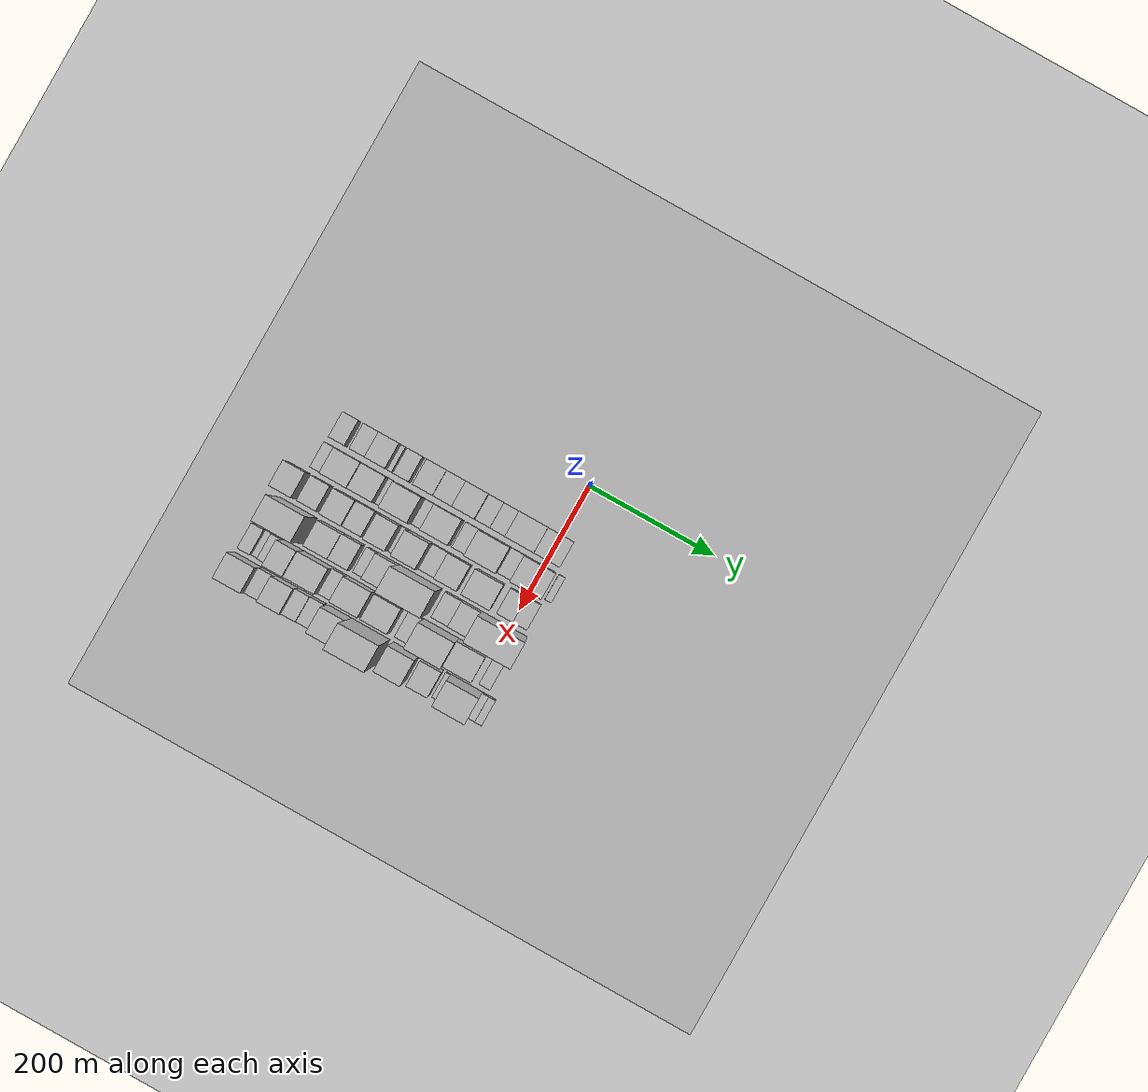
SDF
<sdf version="1.6">
 <world name="default">
  <include><name>ground_plane_1</name><uri>model://HANNAS_ground_plane</uri></include>
  <include>
   <name>ground_plane_2</name>
   <uri>model://HANNAS_ground_plane</uri>
   <pose>100 0 0  0 0 0</pose>
  </include>
  <model name="building_14">
   <static>1</static>
   <pose>100.0000 -334.8359 0 0.000000 0.000000 0.000000</pose>
   <link name="link">
    <pose>0 0 22.50 0 0 0</pose>
    <collision name="collision"><geometry><box><size>40.0000 25.0428 45.0000</size></box></geometry></collision>
    <visual name="visual">
     <cast_shadows>0</cast_shadows>
     <geometry><box><size>40.0000 25.0428 45.0000</size></box></geometry>
     <material>
      <script>
       <uri>model://HANNAS_wall/materials/scripts</uri>
       <uri>model://HANNAS_wall/materials/textures</uri>
       <name>vrc/HANNAS_wall</name>
      </script>
     </material>
    </visual>
   </link>
  </model>
  <model name="building_15">
   <static>1</static>
   <pose>100.0000 -301.9483 0 0.000000 0.000000 0.000000</pose>
   <link name="link">
    <pose>0 0 24.00 0 0 0</pose>
    <collision name="collision"><geometry><box><size>40.0000 24.7324 48.0000</size></box></geometry></collision>
    <visual name="visual">
     <cast_shadows>0</cast_shadows>
     <geometry><box><size>40.0000 24.7324 48.0000</size></box></geometry>
     <material>
      <script>
       <uri>model://HANNAS_wall/materials/scripts</uri>
       <uri>model://HANNAS_wall/materials/textures</uri>
       <name>vrc/HANNAS_wall</name>
      </script>
     </material>
    </visual>
   </link>
  </model>
  <model name="building_16">
   <static>1</static>
   <pose>100.0000 -273.3891 0 0.000000 0.000000 0.000000</pose>
   <link name="link">
    <pose>0 0 27.00 0 0 0</pose>
    <collision name="collision"><geometry><box><size>40.0000 32.3860 54.0000</size></box></geometry></collision>
    <visual name="visual">
     <cast_shadows>0</cast_shadows>
     <geometry><box><size>40.0000 32.3860 54.0000</size></box></geometry>
     <material>
      <script>
       <uri>model://HANNAS_wall/materials/scripts</uri>
       <uri>model://HANNAS_wall/materials/textures</uri>
       <name>vrc/HANNAS_wall</name>
      </script>
     </material>
    </visual>
   </link>
  </model>
  <model name="building_17">
   <static>1</static>
   <pose>100.0000 -253.6204 0 0.000000 0.000000 0.000000</pose>
   <link name="link">
    <pose>0 0 7.50 0 0 0</pose>
    <collision name="collision"><geometry><box><size>40.0000 7.1513 15.0000</size></box></geometry></collision>
    <visual name="visual">
     <cast_shadows>0</cast_shadows>
     <geometry><box><size>40.0000 7.1513 15.0000</size></box></geometry>
     <material>
      <script>
       <uri>model://HANNAS_wall/materials/scripts</uri>
       <uri>model://HANNAS_wall/materials/textures</uri>
       <name>vrc/HANNAS_wall</name>
      </script>
     </material>
    </visual>
   </link>
  </model>
  <model name="building_18">
   <static>1</static>
   <pose>100.0000 -232.7130 0 0.000000 0.000000 0.000000</pose>
   <link name="link">
    <pose>0 0 24.00 0 0 0</pose>
    <collision name="collision"><geometry><box><size>40.0000 24.6636 48.0000</size></box></geometry></collision>
    <visual name="visual">
     <cast_shadows>0</cast_shadows>
     <geometry><box><size>40.0000 24.6636 48.0000</size></box></geometry>
     <material>
      <script>
       <uri>model://HANNAS_wall/materials/scripts</uri>
       <uri>model://HANNAS_wall/materials/textures</uri>
       <name>vrc/HANNAS_wall</name>
      </script>
     </material>
    </visual>
   </link>
  </model>
  <model name="building_19">
   <static>1</static>
   <pose>100.0000 -197.5365 0 0.000000 0.000000 0.000000</pose>
   <link name="link">
    <pose>0 0 30.00 0 0 0</pose>
    <collision name="collision"><geometry><box><size>40.0000 31.6895 60.0000</size></box></geometry></collision>
    <visual name="visual">
     <cast_shadows>0</cast_shadows>
     <geometry><box><size>40.0000 31.6895 60.0000</size></box></geometry>
     <material>
      <script>
       <uri>model://HANNAS_wall/materials/scripts</uri>
       <uri>model://HANNAS_wall/materials/textures</uri>
       <name>vrc/HANNAS_wall</name>
      </script>
     </material>
    </visual>
   </link>
  </model>
  <model name="building_20">
   <static>1</static>
   <pose>100.0000 -166.4657 0 0.000000 0.000000 0.000000</pose>
   <link name="link">
    <pose>0 0 27.00 0 0 0</pose>
    <collision name="collision"><geometry><box><size>40.0000 30.4520 54.0000</size></box></geometry></collision>
    <visual name="visual">
     <cast_shadows>0</cast_shadows>
     <geometry><box><size>40.0000 30.4520 54.0000</size></box></geometry>
     <material>
      <script>
       <uri>model://HANNAS_wall/materials/scripts</uri>
       <uri>model://HANNAS_wall/materials/textures</uri>
       <name>vrc/HANNAS_wall</name>
      </script>
     </material>
    </visual>
   </link>
  </model>
  <model name="building_21">
   <static>1</static>
   <pose>100.0000 -133.3583 0 0.000000 0.000000 0.000000</pose>
   <link name="link">
    <pose>0 0 33.00 0 0 0</pose>
    <collision name="collision"><geometry><box><size>40.0000 35.7628 66.0000</size></box></geometry></collision>
    <visual name="visual">
     <cast_shadows>0</cast_shadows>
     <geometry><box><size>40.0000 35.7628 66.0000</size></box></geometry>
     <material>
      <script>
       <uri>model://HANNAS_wall/materials/scripts</uri>
       <uri>model://HANNAS_wall/materials/textures</uri>
       <name>vrc/HANNAS_wall</name>
      </script>
     </material>
    </visual>
   </link>
  </model>
  <model name="building_22">
   <static>1</static>
   <pose>100.0000 -103.6162 0 0.000000 0.000000 0.000000</pose>
   <link name="link">
    <pose>0 0 22.50 0 0 0</pose>
    <collision name="collision"><geometry><box><size>40.0000 23.7214 45.0000</size></box></geometry></collision>
    <visual name="visual">
     <cast_shadows>0</cast_shadows>
     <geometry><box><size>40.0000 23.7214 45.0000</size></box></geometry>
     <material>
      <script>
       <uri>model://HANNAS_wall/materials/scripts</uri>
       <uri>model://HANNAS_wall/materials/textures</uri>
       <name>vrc/HANNAS_wall</name>
      </script>
     </material>
    </visual>
   </link>
  </model>
  <model name="building_23">
   <static>1</static>
   <pose>100.0000 -79.4500 0 0.000000 0.000000 0.000000</pose>
   <link name="link">
    <pose>0 0 21.00 0 0 0</pose>
    <collision name="collision"><geometry><box><size>40.0000 24.6110 42.0000</size></box></geometry></collision>
    <visual name="visual">
     <cast_shadows>0</cast_shadows>
     <geometry><box><size>40.0000 24.6110 42.0000</size></box></geometry>
     <material>
      <script>
       <uri>model://HANNAS_wall/materials/scripts</uri>
       <uri>model://HANNAS_wall/materials/textures</uri>
       <name>vrc/HANNAS_wall</name>
      </script>
     </material>
    </visual>
   </link>
  </model>
  <model name="building_24">
   <static>1</static>
   <pose>100.0000 -44.3742 0 0.000000 0.000000 0.000000</pose>
   <link name="link">
    <pose>0 0 40.50 0 0 0</pose>
    <collision name="collision"><geometry><box><size>40.0000 45.5407 81.0000</size></box></geometry></collision>
    <visual name="visual">
     <cast_shadows>0</cast_shadows>
     <geometry><box><size>40.0000 45.5407 81.0000</size></box></geometry>
     <material>
      <script>
       <uri>model://HANNAS_wall/materials/scripts</uri>
       <uri>model://HANNAS_wall/materials/textures</uri>
       <name>vrc/HANNAS_wall</name>
      </script>
     </material>
    </visual>
   </link>
  </model>
  <model name="building_25">
   <static>1</static>
   <pose>100.0000 -1.3551 0 0.000000 0.000000 0.000000</pose>
   <link name="link">
    <pose>0 0 37.50 0 0 0</pose>
    <collision name="collision"><geometry><box><size>40.0000 40.4975 75.0000</size></box></geometry></collision>
    <visual name="visual">
     <cast_shadows>0</cast_shadows>
     <geometry><box><size>40.0000 40.4975 75.0000</size></box></geometry>
     <material>
      <script>
       <uri>model://HANNAS_wall/materials/scripts</uri>
       <uri>model://HANNAS_wall/materials/textures</uri>
       <name>vrc/HANNAS_wall</name>
      </script>
     </material>
    </visual>
   </link>
  </model>
  <model name="building_59">
   <static>1</static>
   <pose>149.0000 -340.2768 0 0.000000 0.000000 0.000000</pose>
   <link name="link">
    <pose>0 0 19.50 0 0 0</pose>
    <collision name="collision"><geometry><box><size>40.0000 19.5920 39.0000</size></box></geometry></collision>
    <visual name="visual">
     <cast_shadows>0</cast_shadows>
     <geometry><box><size>40.0000 19.5920 39.0000</size></box></geometry>
     <material>
      <script>
       <uri>model://HANNAS_wall/materials/scripts</uri>
       <uri>model://HANNAS_wall/materials/textures</uri>
       <name>vrc/HANNAS_wall</name>
      </script>
     </material>
    </visual>
   </link>
  </model>
  <model name="building_60">
   <static>1</static>
   <pose>149.0000 -309.3492 0 0.000000 0.000000 0.000000</pose>
   <link name="link">
    <pose>0 0 39.00 0 0 0</pose>
    <collision name="collision"><geometry><box><size>40.0000 42.2632 78.0000</size></box></geometry></collision>
    <visual name="visual">
     <cast_shadows>0</cast_shadows>
     <geometry><box><size>40.0000 42.2632 78.0000</size></box></geometry>
     <material>
      <script>
       <uri>model://HANNAS_wall/materials/scripts</uri>
       <uri>model://HANNAS_wall/materials/textures</uri>
       <name>vrc/HANNAS_wall</name>
      </script>
     </material>
    </visual>
   </link>
  </model>
  <model name="building_61">
   <static>1</static>
   <pose>149.0000 -268.6410 0 0.000000 0.000000 0.000000</pose>
   <link name="link">
    <pose>0 0 34.50 0 0 0</pose>
    <collision name="collision"><geometry><box><size>40.0000 39.1532 69.0000</size></box></geometry></collision>
    <visual name="visual">
     <cast_shadows>0</cast_shadows>
     <geometry><box><size>40.0000 39.1532 69.0000</size></box></geometry>
     <material>
      <script>
       <uri>model://HANNAS_wall/materials/scripts</uri>
       <uri>model://HANNAS_wall/materials/textures</uri>
       <name>vrc/HANNAS_wall</name>
      </script>
     </material>
    </visual>
   </link>
  </model>
  <model name="building_62">
   <static>1</static>
   <pose>149.0000 -245.2549 0 0.000000 0.000000 0.000000</pose>
   <link name="link">
    <pose>0 0 9.00 0 0 0</pose>
    <collision name="collision"><geometry><box><size>40.0000 7.6190 18.0000</size></box></geometry></collision>
    <visual name="visual">
     <cast_shadows>0</cast_shadows>
     <geometry><box><size>40.0000 7.6190 18.0000</size></box></geometry>
     <material>
      <script>
       <uri>model://HANNAS_wall/materials/scripts</uri>
       <uri>model://HANNAS_wall/materials/textures</uri>
       <name>vrc/HANNAS_wall</name>
      </script>
     </material>
    </visual>
   </link>
  </model>
  <model name="building_63">
   <static>1</static>
   <pose>149.0000 -211.4442 0 0.000000 0.000000 0.000000</pose>
   <link name="link">
    <pose>0 0 63.00 0 0 0</pose>
    <collision name="collision"><geometry><box><size>40.0000 44.0024 126.0000</size></box></geometry></collision>
    <visual name="visual">
     <cast_shadows>0</cast_shadows>
     <geometry><box><size>40.0000 44.0024 126.0000</size></box></geometry>
     <material>
      <script>
       <uri>model://HANNAS_wall/materials/scripts</uri>
       <uri>model://HANNAS_wall/materials/textures</uri>
       <name>vrc/HANNAS_wall</name>
      </script>
     </material>
    </visual>
   </link>
  </model>
  <model name="building_64">
   <static>1</static>
   <pose>149.0000 -181.0487 0 0.000000 0.000000 0.000000</pose>
   <link name="link">
    <pose>0 0 16.50 0 0 0</pose>
    <collision name="collision"><geometry><box><size>40.0000 16.7886 33.0000</size></box></geometry></collision>
    <visual name="visual">
     <cast_shadows>0</cast_shadows>
     <geometry><box><size>40.0000 16.7886 33.0000</size></box></geometry>
     <material>
      <script>
       <uri>model://HANNAS_wall/materials/scripts</uri>
       <uri>model://HANNAS_wall/materials/textures</uri>
       <name>vrc/HANNAS_wall</name>
      </script>
     </material>
    </visual>
   </link>
  </model>
  <model name="building_65">
   <static>1</static>
   <pose>149.0000 -150.7828 0 0.000000 0.000000 0.000000</pose>
   <link name="link">
    <pose>0 0 42.00 0 0 0</pose>
    <collision name="collision"><geometry><box><size>40.0000 43.7432 84.0000</size></box></geometry></collision>
    <visual name="visual">
     <cast_shadows>0</cast_shadows>
     <geometry><box><size>40.0000 43.7432 84.0000</size></box></geometry>
     <material>
      <script>
       <uri>model://HANNAS_wall/materials/scripts</uri>
       <uri>model://HANNAS_wall/materials/textures</uri>
       <name>vrc/HANNAS_wall</name>
      </script>
     </material>
    </visual>
   </link>
  </model>
  <model name="building_66">
   <static>1</static>
   <pose>149.0000 -113.1161 0 0.000000 0.000000 0.000000</pose>
   <link name="link">
    <pose>0 0 21.00 0 0 0</pose>
    <collision name="collision"><geometry><box><size>40.0000 23.5902 42.0000</size></box></geometry></collision>
    <visual name="visual">
     <cast_shadows>0</cast_shadows>
     <geometry><box><size>40.0000 23.5902 42.0000</size></box></geometry>
     <material>
      <script>
       <uri>model://HANNAS_wall/materials/scripts</uri>
       <uri>model://HANNAS_wall/materials/textures</uri>
       <name>vrc/HANNAS_wall</name>
      </script>
     </material>
    </visual>
   </link>
  </model>
  <model name="building_67">
   <static>1</static>
   <pose>149.0000 -76.9231 0 0.000000 0.000000 0.000000</pose>
   <link name="link">
    <pose>0 0 67.50 0 0 0</pose>
    <collision name="collision"><geometry><box><size>40.0000 48.7959 135.0000</size></box></geometry></collision>
    <visual name="visual">
     <cast_shadows>0</cast_shadows>
     <geometry><box><size>40.0000 48.7959 135.0000</size></box></geometry>
     <material>
      <script>
       <uri>model://HANNAS_wall/materials/scripts</uri>
       <uri>model://HANNAS_wall/materials/textures</uri>
       <name>vrc/HANNAS_wall</name>
      </script>
     </material>
    </visual>
   </link>
  </model>
  <model name="building_68">
   <static>1</static>
   <pose>149.0000 -41.5381 0 0.000000 0.000000 0.000000</pose>
   <link name="link">
    <pose>0 0 19.50 0 0 0</pose>
    <collision name="collision"><geometry><box><size>40.0000 21.9740 39.0000</size></box></geometry></collision>
    <visual name="visual">
     <cast_shadows>0</cast_shadows>
     <geometry><box><size>40.0000 21.9740 39.0000</size></box></geometry>
     <material>
      <script>
       <uri>model://HANNAS_wall/materials/scripts</uri>
       <uri>model://HANNAS_wall/materials/textures</uri>
       <name>vrc/HANNAS_wall</name>
      </script>
     </material>
    </visual>
   </link>
  </model>
  <model name="building_69">
   <static>1</static>
   <pose>149.0000 -6.2541 0 0.000000 0.000000 0.000000</pose>
   <link name="link">
    <pose>0 0 69.00 0 0 0</pose>
    <collision name="collision"><geometry><box><size>40.0000 48.5938 138.0000</size></box></geometry></collision>
    <visual name="visual">
     <cast_shadows>0</cast_shadows>
     <geometry><box><size>40.0000 48.5938 138.0000</size></box></geometry>
     <material>
      <script>
       <uri>model://HANNAS_wall/materials/scripts</uri>
       <uri>model://HANNAS_wall/materials/textures</uri>
       <name>vrc/HANNAS_wall</name>
      </script>
     </material>
    </visual>
   </link>
  </model>
  <model name="building_70">
   <static>1</static>
   <pose>149.0000 28.1490 0 0.000000 0.000000 0.000000</pose>
   <link name="link">
    <pose>0 0 12.00 0 0 0</pose>
    <collision name="collision"><geometry><box><size>40.0000 10.2124 24.0000</size></box></geometry></collision>
    <visual name="visual">
     <cast_shadows>0</cast_shadows>
     <geometry><box><size>40.0000 10.2124 24.0000</size></box></geometry>
     <material>
      <script>
       <uri>model://HANNAS_wall/materials/scripts</uri>
       <uri>model://HANNAS_wall/materials/textures</uri>
       <name>vrc/HANNAS_wall</name>
      </script>
     </material>
    </visual>
   </link>
  </model>
  <model name="building_107">
   <static>1</static>
   <pose>198.0000 -365.6213 0 0.000000 0.000000 0.000000</pose>
   <link name="link">
    <pose>0 0 34.50 0 0 0</pose>
    <collision name="collision"><geometry><box><size>40.0000 35.0430 69.0000</size></box></geometry></collision>
    <visual name="visual">
     <cast_shadows>0</cast_shadows>
     <geometry><box><size>40.0000 35.0430 69.0000</size></box></geometry>
     <material>
      <script>
       <uri>model://HANNAS_wall/materials/scripts</uri>
       <uri>model://HANNAS_wall/materials/textures</uri>
       <name>vrc/HANNAS_wall</name>
      </script>
     </material>
    </visual>
   </link>
  </model>
  <model name="building_108">
   <static>1</static>
   <pose>198.0000 -326.8399 0 0.000000 0.000000 0.000000</pose>
   <link name="link">
    <pose>0 0 25.50 0 0 0</pose>
    <collision name="collision"><geometry><box><size>40.0000 30.5199 51.0000</size></box></geometry></collision>
    <visual name="visual">
     <cast_shadows>0</cast_shadows>
     <geometry><box><size>40.0000 30.5199 51.0000</size></box></geometry>
     <material>
      <script>
       <uri>model://HANNAS_wall/materials/scripts</uri>
       <uri>model://HANNAS_wall/materials/textures</uri>
       <name>vrc/HANNAS_wall</name>
      </script>
     </material>
    </visual>
   </link>
  </model>
  <model name="building_109">
   <static>1</static>
   <pose>198.0000 -287.3009 0 0.000000 0.000000 0.000000</pose>
   <link name="link">
    <pose>0 0 34.50 0 0 0</pose>
    <collision name="collision"><geometry><box><size>40.0000 34.5582 69.0000</size></box></geometry></collision>
    <visual name="visual">
     <cast_shadows>0</cast_shadows>
     <geometry><box><size>40.0000 34.5582 69.0000</size></box></geometry>
     <material>
      <script>
       <uri>model://HANNAS_wall/materials/scripts</uri>
       <uri>model://HANNAS_wall/materials/textures</uri>
       <name>vrc/HANNAS_wall</name>
      </script>
     </material>
    </visual>
   </link>
  </model>
  <model name="building_110">
   <static>1</static>
   <pose>198.0000 -254.9929 0 0.000000 0.000000 0.000000</pose>
   <link name="link">
    <pose>0 0 27.00 0 0 0</pose>
    <collision name="collision"><geometry><box><size>40.0000 30.0578 54.0000</size></box></geometry></collision>
    <visual name="visual">
     <cast_shadows>0</cast_shadows>
     <geometry><box><size>40.0000 30.0578 54.0000</size></box></geometry>
     <material>
      <script>
       <uri>model://HANNAS_wall/materials/scripts</uri>
       <uri>model://HANNAS_wall/materials/textures</uri>
       <name>vrc/HANNAS_wall</name>
      </script>
     </material>
    </visual>
   </link>
  </model>
  <model name="building_111">
   <static>1</static>
   <pose>198.0000 -236.7630 0 0.000000 0.000000 0.000000</pose>
   <link name="link">
    <pose>0 0 7.50 0 0 0</pose>
    <collision name="collision"><geometry><box><size>40.0000 6.4020 15.0000</size></box></geometry></collision>
    <visual name="visual">
     <cast_shadows>0</cast_shadows>
     <geometry><box><size>40.0000 6.4020 15.0000</size></box></geometry>
     <material>
      <script>
       <uri>model://HANNAS_wall/materials/scripts</uri>
       <uri>model://HANNAS_wall/materials/textures</uri>
       <name>vrc/HANNAS_wall</name>
      </script>
     </material>
    </visual>
   </link>
  </model>
  <model name="building_112">
   <static>1</static>
   <pose>198.0000 -216.4699 0 0.000000 0.000000 0.000000</pose>
   <link name="link">
    <pose>0 0 46.50 0 0 0</pose>
    <collision name="collision"><geometry><box><size>40.0000 34.1841 93.0000</size></box></geometry></collision>
    <visual name="visual">
     <cast_shadows>0</cast_shadows>
     <geometry><box><size>40.0000 34.1841 93.0000</size></box></geometry>
     <material>
      <script>
       <uri>model://HANNAS_wall/materials/scripts</uri>
       <uri>model://HANNAS_wall/materials/textures</uri>
       <name>vrc/HANNAS_wall</name>
      </script>
     </material>
    </visual>
   </link>
  </model>
  <model name="building_113">
   <static>1</static>
   <pose>198.0000 -193.6607 0 0.000000 0.000000 0.000000</pose>
   <link name="link">
    <pose>0 0 12.00 0 0 0</pose>
    <collision name="collision"><geometry><box><size>40.0000 11.4344 24.0000</size></box></geometry></collision>
    <visual name="visual">
     <cast_shadows>0</cast_shadows>
     <geometry><box><size>40.0000 11.4344 24.0000</size></box></geometry>
     <material>
      <script>
       <uri>model://HANNAS_wall/materials/scripts</uri>
       <uri>model://HANNAS_wall/materials/textures</uri>
       <name>vrc/HANNAS_wall</name>
      </script>
     </material>
    </visual>
   </link>
  </model>
  <model name="building_114">
   <static>1</static>
   <pose>198.0000 -168.8374 0 0.000000 0.000000 0.000000</pose>
   <link name="link">
    <pose>0 0 58.50 0 0 0</pose>
    <collision name="collision"><geometry><box><size>40.0000 38.2123 117.0000</size></box></geometry></collision>
    <visual name="visual">
     <cast_shadows>0</cast_shadows>
     <geometry><box><size>40.0000 38.2123 117.0000</size></box></geometry>
     <material>
      <script>
       <uri>model://HANNAS_wall/materials/scripts</uri>
       <uri>model://HANNAS_wall/materials/textures</uri>
       <name>vrc/HANNAS_wall</name>
      </script>
     </material>
    </visual>
   </link>
  </model>
  <model name="building_115">
   <static>1</static>
   <pose>198.0000 -136.9080 0 0.000000 0.000000 0.000000</pose>
   <link name="link">
    <pose>0 0 22.50 0 0 0</pose>
    <collision name="collision"><geometry><box><size>40.0000 25.6464 45.0000</size></box></geometry></collision>
    <visual name="visual">
     <cast_shadows>0</cast_shadows>
     <geometry><box><size>40.0000 25.6464 45.0000</size></box></geometry>
     <material>
      <script>
       <uri>model://HANNAS_wall/materials/scripts</uri>
       <uri>model://HANNAS_wall/materials/textures</uri>
       <name>vrc/HANNAS_wall</name>
      </script>
     </material>
    </visual>
   </link>
  </model>
  <model name="building_116">
   <static>1</static>
   <pose>198.0000 -106.2797 0 0.000000 0.000000 0.000000</pose>
   <link name="link">
    <pose>0 0 34.50 0 0 0</pose>
    <collision name="collision"><geometry><box><size>40.0000 35.6103 69.0000</size></box></geometry></collision>
    <visual name="visual">
     <cast_shadows>0</cast_shadows>
     <geometry><box><size>40.0000 35.6103 69.0000</size></box></geometry>
     <material>
      <script>
       <uri>model://HANNAS_wall/materials/scripts</uri>
       <uri>model://HANNAS_wall/materials/textures</uri>
       <name>vrc/HANNAS_wall</name>
      </script>
     </material>
    </visual>
   </link>
  </model>
  <model name="building_117">
   <static>1</static>
   <pose>198.0000 -58.1262 0 0.000000 0.000000 0.000000</pose>
   <link name="link">
    <pose>0 0 43.50 0 0 0</pose>
    <collision name="collision"><geometry><box><size>40.0000 44.6966 87.0000</size></box></geometry></collision>
    <visual name="visual">
     <cast_shadows>0</cast_shadows>
     <geometry><box><size>40.0000 44.6966 87.0000</size></box></geometry>
     <material>
      <script>
       <uri>model://HANNAS_wall/materials/scripts</uri>
       <uri>model://HANNAS_wall/materials/textures</uri>
       <name>vrc/HANNAS_wall</name>
      </script>
     </material>
    </visual>
   </link>
  </model>
  <model name="building_118">
   <static>1</static>
   <pose>198.0000 -13.0134 0 0.000000 0.000000 0.000000</pose>
   <link name="link">
    <pose>0 0 24.00 0 0 0</pose>
    <collision name="collision"><geometry><box><size>40.0000 25.5291 48.0000</size></box></geometry></collision>
    <visual name="visual">
     <cast_shadows>0</cast_shadows>
     <geometry><box><size>40.0000 25.5291 48.0000</size></box></geometry>
     <material>
      <script>
       <uri>model://HANNAS_wall/materials/scripts</uri>
       <uri>model://HANNAS_wall/materials/textures</uri>
       <name>vrc/HANNAS_wall</name>
      </script>
     </material>
    </visual>
   </link>
  </model>
  <model name="building_119">
   <static>1</static>
   <pose>198.0000 11.0449 0 0.000000 0.000000 0.000000</pose>
   <link name="link">
    <pose>0 0 19.50 0 0 0</pose>
    <collision name="collision"><geometry><box><size>40.0000 22.5875 39.0000</size></box></geometry></collision>
    <visual name="visual">
     <cast_shadows>0</cast_shadows>
     <geometry><box><size>40.0000 22.5875 39.0000</size></box></geometry>
     <material>
      <script>
       <uri>model://HANNAS_wall/materials/scripts</uri>
       <uri>model://HANNAS_wall/materials/textures</uri>
       <name>vrc/HANNAS_wall</name>
      </script>
     </material>
    </visual>
   </link>
  </model>
  <model name="building_154">
   <static>1</static>
   <pose>247.0000 -339.3261 0 0.000000 0.000000 0.000000</pose>
   <link name="link">
    <pose>0 0 76.50 0 0 0</pose>
    <collision name="collision"><geometry><box><size>40.0000 59.9852 153.0000</size></box></geometry></collision>
    <visual name="visual">
     <cast_shadows>0</cast_shadows>
     <geometry><box><size>40.0000 59.9852 153.0000</size></box></geometry>
     <material>
      <script>
       <uri>model://HANNAS_wall/materials/scripts</uri>
       <uri>model://HANNAS_wall/materials/textures</uri>
       <name>vrc/HANNAS_wall</name>
      </script>
     </material>
    </visual>
   </link>
  </model>
  <model name="building_155">
   <static>1</static>
   <pose>247.0000 -283.2654 0 0.000000 0.000000 0.000000</pose>
   <link name="link">
    <pose>0 0 33.00 0 0 0</pose>
    <collision name="collision"><geometry><box><size>40.0000 38.1362 66.0000</size></box></geometry></collision>
    <visual name="visual">
     <cast_shadows>0</cast_shadows>
     <geometry><box><size>40.0000 38.1362 66.0000</size></box></geometry>
     <material>
      <script>
       <uri>model://HANNAS_wall/materials/scripts</uri>
       <uri>model://HANNAS_wall/materials/textures</uri>
       <name>vrc/HANNAS_wall</name>
      </script>
     </material>
    </visual>
   </link>
  </model>
  <model name="building_156">
   <static>1</static>
   <pose>247.0000 -248.5981 0 0.000000 0.000000 0.000000</pose>
   <link name="link">
    <pose>0 0 30.00 0 0 0</pose>
    <collision name="collision"><geometry><box><size>40.0000 31.1983 60.0000</size></box></geometry></collision>
    <visual name="visual">
     <cast_shadows>0</cast_shadows>
     <geometry><box><size>40.0000 31.1983 60.0000</size></box></geometry>
     <material>
      <script>
       <uri>model://HANNAS_wall/materials/scripts</uri>
       <uri>model://HANNAS_wall/materials/textures</uri>
       <name>vrc/HANNAS_wall</name>
      </script>
     </material>
    </visual>
   </link>
  </model>
  <model name="building_157">
   <static>1</static>
   <pose>247.0000 -219.2874 0 0.000000 0.000000 0.000000</pose>
   <link name="link">
    <pose>0 0 15.00 0 0 0</pose>
    <collision name="collision"><geometry><box><size>40.0000 17.4232 30.0000</size></box></geometry></collision>
    <visual name="visual">
     <cast_shadows>0</cast_shadows>
     <geometry><box><size>40.0000 17.4232 30.0000</size></box></geometry>
     <material>
      <script>
       <uri>model://HANNAS_wall/materials/scripts</uri>
       <uri>model://HANNAS_wall/materials/textures</uri>
       <name>vrc/HANNAS_wall</name>
      </script>
     </material>
    </visual>
   </link>
  </model>
  <model name="building_158">
   <static>1</static>
   <pose>247.0000 -193.6033 0 0.000000 0.000000 0.000000</pose>
   <link name="link">
    <pose>0 0 33.00 0 0 0</pose>
    <collision name="collision"><geometry><box><size>40.0000 33.9448 66.0000</size></box></geometry></collision>
    <visual name="visual">
     <cast_shadows>0</cast_shadows>
     <geometry><box><size>40.0000 33.9448 66.0000</size></box></geometry>
     <material>
      <script>
       <uri>model://HANNAS_wall/materials/scripts</uri>
       <uri>model://HANNAS_wall/materials/textures</uri>
       <name>vrc/HANNAS_wall</name>
      </script>
     </material>
    </visual>
   </link>
  </model>
  <model name="building_159">
   <static>1</static>
   <pose>247.0000 -142.7196 0 0.000000 0.000000 0.000000</pose>
   <link name="link">
    <pose>0 0 96.00 0 0 0</pose>
    <collision name="collision"><geometry><box><size>40.0000 67.8226 192.0000</size></box></geometry></collision>
    <visual name="visual">
     <cast_shadows>0</cast_shadows>
     <geometry><box><size>40.0000 67.8226 192.0000</size></box></geometry>
     <material>
      <script>
       <uri>model://HANNAS_wall/materials/scripts</uri>
       <uri>model://HANNAS_wall/materials/textures</uri>
       <name>vrc/HANNAS_wall</name>
      </script>
     </material>
    </visual>
   </link>
  </model>
  <model name="building_160">
   <static>1</static>
   <pose>247.0000 -88.5328 0 0.000000 0.000000 0.000000</pose>
   <link name="link">
    <pose>0 0 24.00 0 0 0</pose>
    <collision name="collision"><geometry><box><size>40.0000 26.5511 48.0000</size></box></geometry></collision>
    <visual name="visual">
     <cast_shadows>0</cast_shadows>
     <geometry><box><size>40.0000 26.5511 48.0000</size></box></geometry>
     <material>
      <script>
       <uri>model://HANNAS_wall/materials/scripts</uri>
       <uri>model://HANNAS_wall/materials/textures</uri>
       <name>vrc/HANNAS_wall</name>
      </script>
     </material>
    </visual>
   </link>
  </model>
  <model name="building_161">
   <static>1</static>
   <pose>247.0000 -59.7834 0 0.000000 0.000000 0.000000</pose>
   <link name="link">
    <pose>0 0 28.50 0 0 0</pose>
    <collision name="collision"><geometry><box><size>40.0000 30.9476 57.0000</size></box></geometry></collision>
    <visual name="visual">
     <cast_shadows>0</cast_shadows>
     <geometry><box><size>40.0000 30.9476 57.0000</size></box></geometry>
     <material>
      <script>
       <uri>model://HANNAS_wall/materials/scripts</uri>
       <uri>model://HANNAS_wall/materials/textures</uri>
       <name>vrc/HANNAS_wall</name>
      </script>
     </material>
    </visual>
   </link>
  </model>
  <model name="building_162">
   <static>1</static>
   <pose>247.0000 -8.4711 0 0.000000 0.000000 0.000000</pose>
   <link name="link">
    <pose>0 0 97.50 0 0 0</pose>
    <collision name="collision"><geometry><box><size>40.0000 71.6770 195.0000</size></box></geometry></collision>
    <visual name="visual">
     <cast_shadows>0</cast_shadows>
     <geometry><box><size>40.0000 71.6770 195.0000</size></box></geometry>
     <material>
      <script>
       <uri>model://HANNAS_wall/materials/scripts</uri>
       <uri>model://HANNAS_wall/materials/textures</uri>
       <name>vrc/HANNAS_wall</name>
      </script>
     </material>
    </visual>
   </link>
  </model>
  <model name="building_202">
   <static>1</static>
   <pose>296.0000 -372.2819 0 0.000000 0.000000 0.000000</pose>
   <link name="link">
    <pose>0 0 19.50 0 0 0</pose>
    <collision name="collision"><geometry><box><size>40.0000 19.8055 39.0000</size></box></geometry></collision>
    <visual name="visual">
     <cast_shadows>0</cast_shadows>
     <geometry><box><size>40.0000 19.8055 39.0000</size></box></geometry>
     <material>
      <script>
       <uri>model://HANNAS_wall/materials/scripts</uri>
       <uri>model://HANNAS_wall/materials/textures</uri>
       <name>vrc/HANNAS_wall</name>
      </script>
     </material>
    </visual>
   </link>
  </model>
  <model name="building_203">
   <static>1</static>
   <pose>296.0000 -357.1889 0 0.000000 0.000000 0.000000</pose>
   <link name="link">
    <pose>0 0 10.50 0 0 0</pose>
    <collision name="collision"><geometry><box><size>40.0000 10.3806 21.0000</size></box></geometry></collision>
    <visual name="visual">
     <cast_shadows>0</cast_shadows>
     <geometry><box><size>40.0000 10.3806 21.0000</size></box></geometry>
     <material>
      <script>
       <uri>model://HANNAS_wall/materials/scripts</uri>
       <uri>model://HANNAS_wall/materials/textures</uri>
       <name>vrc/HANNAS_wall</name>
      </script>
     </material>
    </visual>
   </link>
  </model>
  <model name="building_204">
   <static>1</static>
   <pose>296.0000 -342.9598 0 0.000000 0.000000 0.000000</pose>
   <link name="link">
    <pose>0 0 16.50 0 0 0</pose>
    <collision name="collision"><geometry><box><size>40.0000 18.0776 33.0000</size></box></geometry></collision>
    <visual name="visual">
     <cast_shadows>0</cast_shadows>
     <geometry><box><size>40.0000 18.0776 33.0000</size></box></geometry>
     <material>
      <script>
       <uri>model://HANNAS_wall/materials/scripts</uri>
       <uri>model://HANNAS_wall/materials/textures</uri>
       <name>vrc/HANNAS_wall</name>
      </script>
     </material>
    </visual>
   </link>
  </model>
  <model name="building_205">
   <static>1</static>
   <pose>296.0000 -318.1983 0 0.000000 0.000000 0.000000</pose>
   <link name="link">
    <pose>0 0 49.50 0 0 0</pose>
    <collision name="collision"><geometry><box><size>40.0000 31.4454 99.0000</size></box></geometry></collision>
    <visual name="visual">
     <cast_shadows>0</cast_shadows>
     <geometry><box><size>40.0000 31.4454 99.0000</size></box></geometry>
     <material>
      <script>
       <uri>model://HANNAS_wall/materials/scripts</uri>
       <uri>model://HANNAS_wall/materials/textures</uri>
       <name>vrc/HANNAS_wall</name>
      </script>
     </material>
    </visual>
   </link>
  </model>
  <model name="building_206">
   <static>1</static>
   <pose>296.0000 -278.2425 0 0.000000 0.000000 0.000000</pose>
   <link name="link">
    <pose>0 0 45.00 0 0 0</pose>
    <collision name="collision"><geometry><box><size>40.0000 48.4662 90.0000</size></box></geometry></collision>
    <visual name="visual">
     <cast_shadows>0</cast_shadows>
     <geometry><box><size>40.0000 48.4662 90.0000</size></box></geometry>
     <material>
      <script>
       <uri>model://HANNAS_wall/materials/scripts</uri>
       <uri>model://HANNAS_wall/materials/textures</uri>
       <name>vrc/HANNAS_wall</name>
      </script>
     </material>
    </visual>
   </link>
  </model>
  <model name="building_207">
   <static>1</static>
   <pose>296.0000 -243.3603 0 0.000000 0.000000 0.000000</pose>
   <link name="link">
    <pose>0 0 19.50 0 0 0</pose>
    <collision name="collision"><geometry><box><size>40.0000 21.2983 39.0000</size></box></geometry></collision>
    <visual name="visual">
     <cast_shadows>0</cast_shadows>
     <geometry><box><size>40.0000 21.2983 39.0000</size></box></geometry>
     <material>
      <script>
       <uri>model://HANNAS_wall/materials/scripts</uri>
       <uri>model://HANNAS_wall/materials/textures</uri>
       <name>vrc/HANNAS_wall</name>
      </script>
     </material>
    </visual>
   </link>
  </model>
  <model name="building_208">
   <static>1</static>
   <pose>296.0000 -210.3667 0 0.000000 0.000000 0.000000</pose>
   <link name="link">
    <pose>0 0 37.50 0 0 0</pose>
    <collision name="collision"><geometry><box><size>40.0000 44.6888 75.0000</size></box></geometry></collision>
    <visual name="visual">
     <cast_shadows>0</cast_shadows>
     <geometry><box><size>40.0000 44.6888 75.0000</size></box></geometry>
     <material>
      <script>
       <uri>model://HANNAS_wall/materials/scripts</uri>
       <uri>model://HANNAS_wall/materials/textures</uri>
       <name>vrc/HANNAS_wall</name>
      </script>
     </material>
    </visual>
   </link>
  </model>
  <model name="building_209">
   <static>1</static>
   <pose>296.0000 -162.9126 0 0.000000 0.000000 0.000000</pose>
   <link name="link">
    <pose>0 0 36.00 0 0 0</pose>
    <collision name="collision"><geometry><box><size>40.0000 42.2195 72.0000</size></box></geometry></collision>
    <visual name="visual">
     <cast_shadows>0</cast_shadows>
     <geometry><box><size>40.0000 42.2195 72.0000</size></box></geometry>
     <material>
      <script>
       <uri>model://HANNAS_wall/materials/scripts</uri>
       <uri>model://HANNAS_wall/materials/textures</uri>
       <name>vrc/HANNAS_wall</name>
      </script>
     </material>
    </visual>
   </link>
  </model>
  <model name="building_210">
   <static>1</static>
   <pose>296.0000 -121.3817 0 0.000000 0.000000 0.000000</pose>
   <link name="link">
    <pose>0 0 19.50 0 0 0</pose>
    <collision name="collision"><geometry><box><size>40.0000 22.8423 39.0000</size></box></geometry></collision>
    <visual name="visual">
     <cast_shadows>0</cast_shadows>
     <geometry><box><size>40.0000 22.8423 39.0000</size></box></geometry>
     <material>
      <script>
       <uri>model://HANNAS_wall/materials/scripts</uri>
       <uri>model://HANNAS_wall/materials/textures</uri>
       <name>vrc/HANNAS_wall</name>
      </script>
     </material>
    </visual>
   </link>
  </model>
  <model name="building_211">
   <static>1</static>
   <pose>296.0000 -81.8800 0 0.000000 0.000000 0.000000</pose>
   <link name="link">
    <pose>0 0 72.00 0 0 0</pose>
    <collision name="collision"><geometry><box><size>40.0000 56.1610 144.0000</size></box></geometry></collision>
    <visual name="visual">
     <cast_shadows>0</cast_shadows>
     <geometry><box><size>40.0000 56.1610 144.0000</size></box></geometry>
     <material>
      <script>
       <uri>model://HANNAS_wall/materials/scripts</uri>
       <uri>model://HANNAS_wall/materials/textures</uri>
       <name>vrc/HANNAS_wall</name>
      </script>
     </material>
    </visual>
   </link>
  </model>
  <model name="building_212">
   <static>1</static>
   <pose>296.0000 -31.3492 0 0.000000 0.000000 0.000000</pose>
   <link name="link">
    <pose>0 0 43.50 0 0 0</pose>
    <collision name="collision"><geometry><box><size>40.0000 44.9006 87.0000</size></box></geometry></collision>
    <visual name="visual">
     <cast_shadows>0</cast_shadows>
     <geometry><box><size>40.0000 44.9006 87.0000</size></box></geometry>
     <material>
      <script>
       <uri>model://HANNAS_wall/materials/scripts</uri>
       <uri>model://HANNAS_wall/materials/textures</uri>
       <name>vrc/HANNAS_wall</name>
      </script>
     </material>
    </visual>
   </link>
  </model>
  <model name="building_213">
   <static>1</static>
   <pose>296.0000 9.9374 0 0.000000 0.000000 0.000000</pose>
   <link name="link">
    <pose>0 0 15.00 0 0 0</pose>
    <collision name="collision"><geometry><box><size>40.0000 17.6727 30.0000</size></box></geometry></collision>
    <visual name="visual">
     <cast_shadows>0</cast_shadows>
     <geometry><box><size>40.0000 17.6727 30.0000</size></box></geometry>
     <material>
      <script>
       <uri>model://HANNAS_wall/materials/scripts</uri>
       <uri>model://HANNAS_wall/materials/textures</uri>
       <name>vrc/HANNAS_wall</name>
      </script>
     </material>
    </visual>
   </link>
  </model>
  <model name="building_248">
   <static>1</static>
   <pose>345.0000 -364.8607 0 0.000000 0.000000 0.000000</pose>
   <link name="link">
    <pose>0 0 39.00 0 0 0</pose>
    <collision name="collision"><geometry><box><size>40.0000 43.4958 78.0000</size></box></geometry></collision>
    <visual name="visual">
     <cast_shadows>0</cast_shadows>
     <geometry><box><size>40.0000 43.4958 78.0000</size></box></geometry>
     <material>
      <script>
       <uri>model://HANNAS_wall/materials/scripts</uri>
       <uri>model://HANNAS_wall/materials/textures</uri>
       <name>vrc/HANNAS_wall</name>
      </script>
     </material>
    </visual>
   </link>
  </model>
  <model name="building_249">
   <static>1</static>
   <pose>345.0000 -331.4481 0 0.000000 0.000000 0.000000</pose>
   <link name="link">
    <pose>0 0 21.00 0 0 0</pose>
    <collision name="collision"><geometry><box><size>40.0000 23.3294 42.0000</size></box></geometry></collision>
    <visual name="visual">
     <cast_shadows>0</cast_shadows>
     <geometry><box><size>40.0000 23.3294 42.0000</size></box></geometry>
     <material>
      <script>
       <uri>model://HANNAS_wall/materials/scripts</uri>
       <uri>model://HANNAS_wall/materials/textures</uri>
       <name>vrc/HANNAS_wall</name>
      </script>
     </material>
    </visual>
   </link>
  </model>
  <model name="building_250">
   <static>1</static>
   <pose>345.0000 -302.0002 0 0.000000 0.000000 0.000000</pose>
   <link name="link">
    <pose>0 0 33.00 0 0 0</pose>
    <collision name="collision"><geometry><box><size>40.0000 35.5664 66.0000</size></box></geometry></collision>
    <visual name="visual">
     <cast_shadows>0</cast_shadows>
     <geometry><box><size>40.0000 35.5664 66.0000</size></box></geometry>
     <material>
      <script>
       <uri>model://HANNAS_wall/materials/scripts</uri>
       <uri>model://HANNAS_wall/materials/textures</uri>
       <name>vrc/HANNAS_wall</name>
      </script>
     </material>
    </visual>
   </link>
  </model>
  <model name="building_251">
   <static>1</static>
   <pose>345.0000 -272.7929 0 0.000000 0.000000 0.000000</pose>
   <link name="link">
    <pose>0 0 22.50 0 0 0</pose>
    <collision name="collision"><geometry><box><size>40.0000 22.8482 45.0000</size></box></geometry></collision>
    <visual name="visual">
     <cast_shadows>0</cast_shadows>
     <geometry><box><size>40.0000 22.8482 45.0000</size></box></geometry>
     <material>
      <script>
       <uri>model://HANNAS_wall/materials/scripts</uri>
       <uri>model://HANNAS_wall/materials/textures</uri>
       <name>vrc/HANNAS_wall</name>
      </script>
     </material>
    </visual>
   </link>
  </model>
  <model name="building_252">
   <static>1</static>
   <pose>345.0000 -250.5302 0 0.000000 0.000000 0.000000</pose>
   <link name="link">
    <pose>0 0 19.50 0 0 0</pose>
    <collision name="collision"><geometry><box><size>40.0000 21.6771 39.0000</size></box></geometry></collision>
    <visual name="visual">
     <cast_shadows>0</cast_shadows>
     <geometry><box><size>40.0000 21.6771 39.0000</size></box></geometry>
     <material>
      <script>
       <uri>model://HANNAS_wall/materials/scripts</uri>
       <uri>model://HANNAS_wall/materials/textures</uri>
       <name>vrc/HANNAS_wall</name>
      </script>
     </material>
    </visual>
   </link>
  </model>
  <model name="building_253">
   <static>1</static>
   <pose>345.0000 -217.9161 0 0.000000 0.000000 0.000000</pose>
   <link name="link">
    <pose>0 0 54.00 0 0 0</pose>
    <collision name="collision"><geometry><box><size>40.0000 37.5511 108.0000</size></box></geometry></collision>
    <visual name="visual">
     <cast_shadows>0</cast_shadows>
     <geometry><box><size>40.0000 37.5511 108.0000</size></box></geometry>
     <material>
      <script>
       <uri>model://HANNAS_wall/materials/scripts</uri>
       <uri>model://HANNAS_wall/materials/textures</uri>
       <name>vrc/HANNAS_wall</name>
      </script>
     </material>
    </visual>
   </link>
  </model>
  <model name="building_254">
   <static>1</static>
   <pose>345.0000 -168.2582 0 0.000000 0.000000 0.000000</pose>
   <link name="link">
    <pose>0 0 96.00 0 0 0</pose>
    <collision name="collision"><geometry><box><size>40.0000 61.7648 192.0000</size></box></geometry></collision>
    <visual name="visual">
     <cast_shadows>0</cast_shadows>
     <geometry><box><size>40.0000 61.7648 192.0000</size></box></geometry>
     <material>
      <script>
       <uri>model://HANNAS_wall/materials/scripts</uri>
       <uri>model://HANNAS_wall/materials/textures</uri>
       <name>vrc/HANNAS_wall</name>
      </script>
     </material>
    </visual>
   </link>
  </model>
  <model name="building_255">
   <static>1</static>
   <pose>345.0000 -110.6105 0 0.000000 0.000000 0.000000</pose>
   <link name="link">
    <pose>0 0 58.50 0 0 0</pose>
    <collision name="collision"><geometry><box><size>40.0000 41.5305 117.0000</size></box></geometry></collision>
    <visual name="visual">
     <cast_shadows>0</cast_shadows>
     <geometry><box><size>40.0000 41.5305 117.0000</size></box></geometry>
     <material>
      <script>
       <uri>model://HANNAS_wall/materials/scripts</uri>
       <uri>model://HANNAS_wall/materials/textures</uri>
       <name>vrc/HANNAS_wall</name>
      </script>
     </material>
    </visual>
   </link>
  </model>
  <model name="building_256">
   <static>1</static>
   <pose>345.0000 -67.9730 0 0.000000 0.000000 0.000000</pose>
   <link name="link">
    <pose>0 0 33.00 0 0 0</pose>
    <collision name="collision"><geometry><box><size>40.0000 33.7446 66.0000</size></box></geometry></collision>
    <visual name="visual">
     <cast_shadows>0</cast_shadows>
     <geometry><box><size>40.0000 33.7446 66.0000</size></box></geometry>
     <material>
      <script>
       <uri>model://HANNAS_wall/materials/scripts</uri>
       <uri>model://HANNAS_wall/materials/textures</uri>
       <name>vrc/HANNAS_wall</name>
      </script>
     </material>
    </visual>
   </link>
  </model>
  <model name="building_257">
   <static>1</static>
   <pose>345.0000 -43.1849 0 0.000000 0.000000 0.000000</pose>
   <link name="link">
    <pose>0 0 9.00 0 0 0</pose>
    <collision name="collision"><geometry><box><size>40.0000 7.8315 18.0000</size></box></geometry></collision>
    <visual name="visual">
     <cast_shadows>0</cast_shadows>
     <geometry><box><size>40.0000 7.8315 18.0000</size></box></geometry>
     <material>
      <script>
       <uri>model://HANNAS_wall/materials/scripts</uri>
       <uri>model://HANNAS_wall/materials/textures</uri>
       <name>vrc/HANNAS_wall</name>
      </script>
     </material>
    </visual>
   </link>
  </model>
  <model name="building_258">
   <static>1</static>
   <pose>345.0000 -14.1853 0 0.000000 0.000000 0.000000</pose>
   <link name="link">
    <pose>0 0 69.00 0 0 0</pose>
    <collision name="collision"><geometry><box><size>40.0000 50.1678 138.0000</size></box></geometry></collision>
    <visual name="visual">
     <cast_shadows>0</cast_shadows>
     <geometry><box><size>40.0000 50.1678 138.0000</size></box></geometry>
     <material>
      <script>
       <uri>model://HANNAS_wall/materials/scripts</uri>
       <uri>model://HANNAS_wall/materials/textures</uri>
       <name>vrc/HANNAS_wall</name>
      </script>
     </material>
    </visual>
   </link>
  </model>
  <model name="building_259">
   <static>1</static>
   <pose>345.0000 16.4474 0 0.000000 0.000000 0.000000</pose>
   <link name="link">
    <pose>0 0 12.00 0 0 0</pose>
    <collision name="collision"><geometry><box><size>40.0000 11.0974 24.0000</size></box></geometry></collision>
    <visual name="visual">
     <cast_shadows>0</cast_shadows>
     <geometry><box><size>40.0000 11.0974 24.0000</size></box></geometry>
     <material>
      <script>
       <uri>model://HANNAS_wall/materials/scripts</uri>
       <uri>model://HANNAS_wall/materials/textures</uri>
       <name>vrc/HANNAS_wall</name>
      </script>
     </material>
    </visual>
   </link>
  </model>
  <model name="building_260">
   <static>1</static>
   <pose>345.0000 27.4325 0 0.000000 0.000000 0.000000</pose>
   <link name="link">
    <pose>0 0 13.50 0 0 0</pose>
    <collision name="collision"><geometry><box><size>40.0000 10.8728 27.0000</size></box></geometry></collision>
    <visual name="visual">
     <cast_shadows>0</cast_shadows>
     <geometry><box><size>40.0000 10.8728 27.0000</size></box></geometry>
     <material>
      <script>
       <uri>model://HANNAS_wall/materials/scripts</uri>
       <uri>model://HANNAS_wall/materials/textures</uri>
       <name>vrc/HANNAS_wall</name>
      </script>
     </material>
    </visual>
   </link>
  </model>
 </world>
</sdf>
